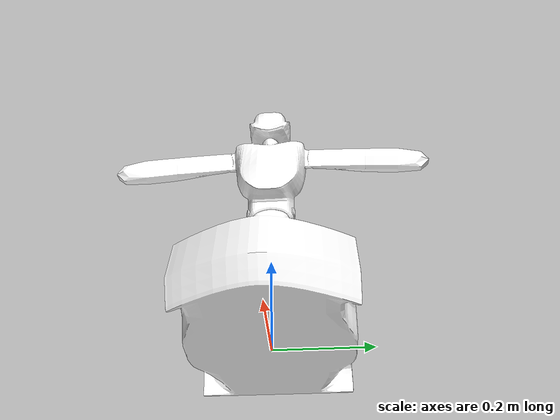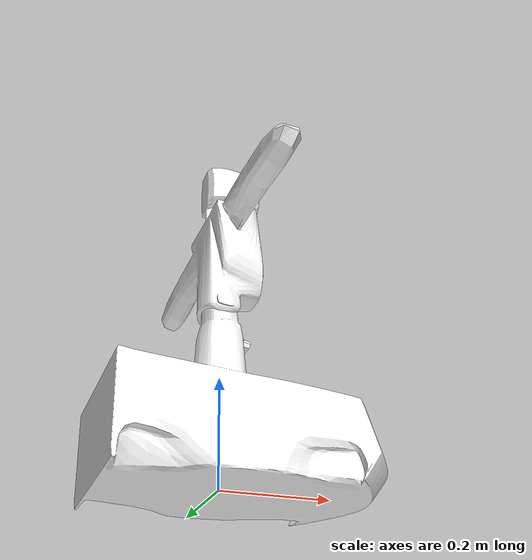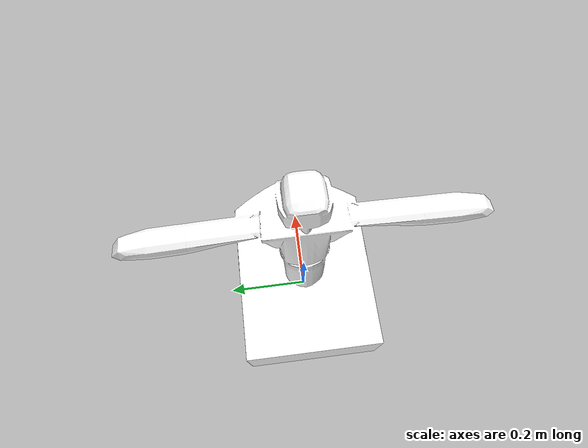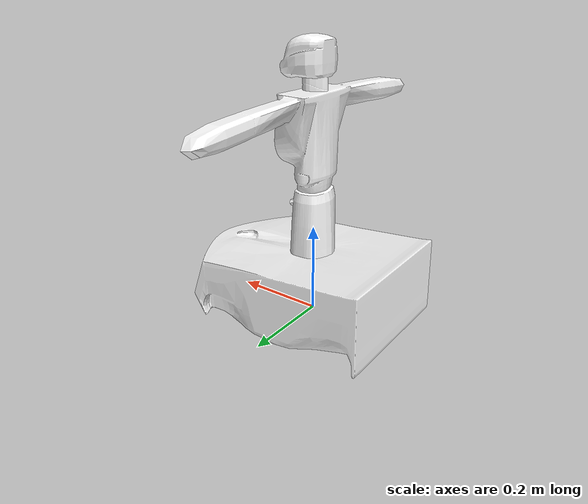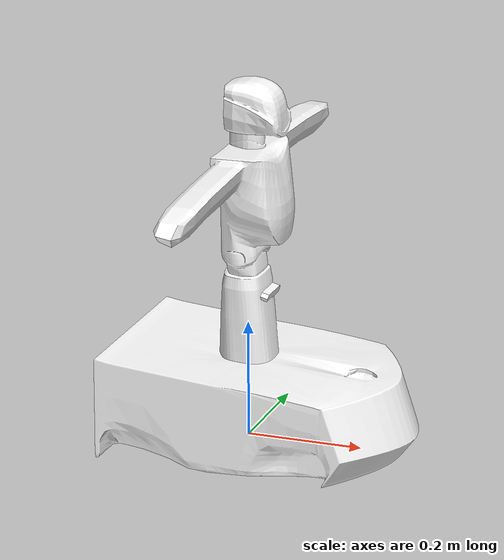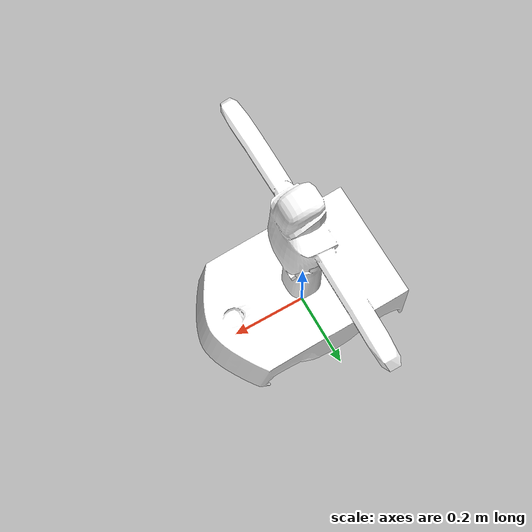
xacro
<?xml version="1.0"?>
<robot name="robot_mecanum" xmlns:xacro="http://ros.org/wiki/xacro">

 <!-- ####### GENERIC CONSTANTS ##### -->

  <!--All units in m-kg-s-radians unit system -->
  <xacro:property name="PI" value="3.1415" />
  <xacro:property name="M_PI" value="3.14159265358979323846264338327950288419716" />
  <xacro:property name="M_PI_2" value="1.570796327" />
  <xacro:property name="ROTATE_90_DEGREES" value="${M_PI_2}" />
  <xacro:property name="ROTATE_180_DEGREES" value="${M_PI}" />
  <xacro:property name="DEG_TO_RAD" value="0.017453293" />
  <xacro:property name="SCALE_in_to_m" value="0.0254"/> <!--inches to meters-->
  <xacro:property name="SCALE_mm_to_m" value="0.001"/> <!--milimeters to meters-->
  <xacro:property name="kgcm_to_nm" value="0.0980665" />
  <xacro:property name="cameraSize" value="0.05"/>
  <xacro:property name="cameraMass" value="0.1"/>

  <xacro:include filename="$(find mybot_description)/urdf/mybot.gazebo" />
  <xacro:include filename="$(find mybot_description)/urdf/materials.xacro" />
  <xacro:include filename="$(find mybot_description)/urdf/macros.xacro" />
    <material name="yellow"><color rgba="0.8 0.8 0.0 1.0" /></material>
  <material name="black"><color rgba="0.15 0.15 0.15 1.0" /></material>
  <material name="dark_grey"><color rgba="0.2 0.2 0.2 1.0" /></material>
  <material name="light_grey"><color rgba="0.4 0.4 0.4 1.0" /></material>

     <material name="Black">
        <color rgba="0.0 0.0 0.0 1.0"/>
    </material>

    <material name="Blue">
        <color rgba="0.0 0.0 0.8 1.0"/>
    </material>

    <material name="Green">
        <color rgba="0.0 0.8 0.0 1.0"/>
    </material>

    <material name="Grey">
        <color rgba="0.2 0.2 0.2 1.0"/>
    </material>

    <material name="DarkGrey">
        <color rgba="0.1 0.1 0.1 1.0"/>
    </material>

    <material name="Orange">
        <color rgba="${255/255} ${108/255} ${10/255} 1.0"/>
    </material>

    <material name="Brown">
        <color rgba="${222/255} ${207/255} ${195/255} 1.0"/>
    </material>

    <material name="Red">
        <color rgba="0.8 0.0 0.0 1.0"/>
    </material>

    <material name="White">
        <color rgba="1.0 1.0 1.0 1.0"/>
    </material>

    <material name="Grey">
        <color rgba="0.2 0.2 0.2 1.0"/>
    </material>
 <link name="base_link">
    <visual>
      <geometry>
        <mesh filename="package://robco_4wd_mecanum_description/meshes/robot5.STL" scale="0.5 0.5 0.5"/>

      </geometry>
      <material name="White" />
    </visual>
  </link>

  <link name="right_leg">
  </link>

  <joint name="base_to_right_leg" type="fixed">
    <parent link="base_link"/>
    <child link="right_leg"/>
  </joint>

   </robot>
